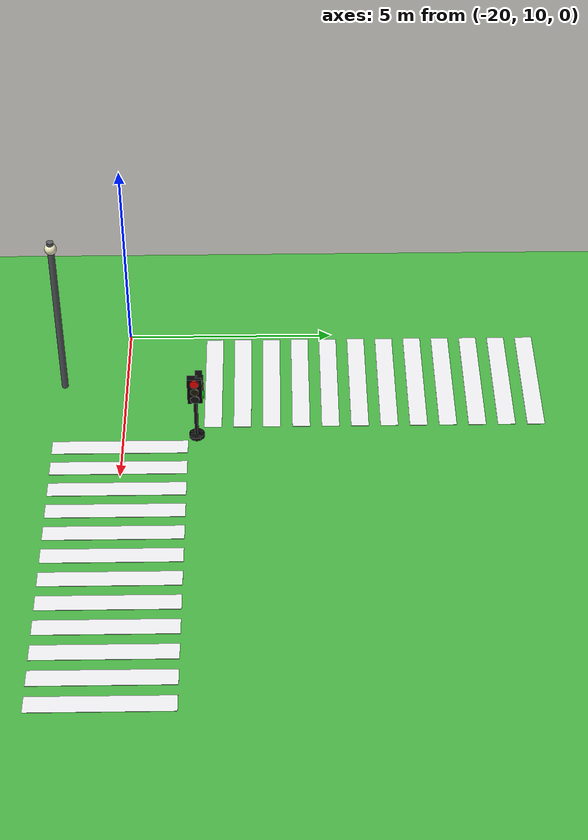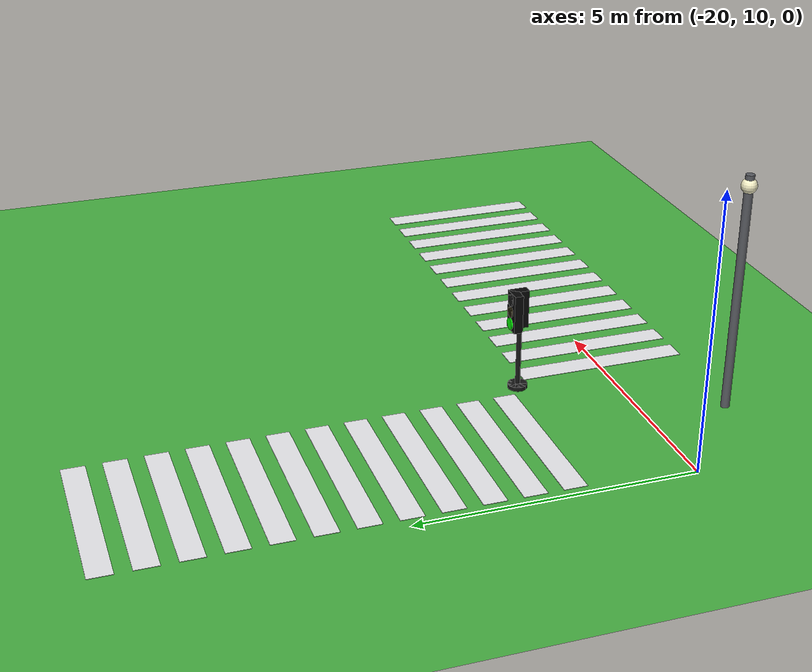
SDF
<sdf version="1.10">
 <world name="city_second">
  <model name="ground_plane">
   <static>true</static>
   <link name="link">
    <collision name="collision">
     <geometry><plane><normal>0 0 1</normal><size>300 300</size></plane></geometry>
    </collision>
    <visual name="visual">
     <geometry><plane><normal>0 0 1</normal><size>300 300</size></plane></geometry>
     <material>
      <ambient>0.280000001 0.689999998 0.25999999 1</ambient>
      <diffuse>0.280000001 0.689999998 0.25999999 1</diffuse>
      <specular>0.0299999993 0.0299999993 0.0299999993 1</specular>
     </material>
    </visual>
    <inertial>
     <mass>1</mass>
     <inertia><ixx>1</ixx><ixy>0</ixy><ixz>0</ixz><iyy>1</iyy><iyz>0</iyz><izz>1</izz></inertia>
    </inertial>
   </link>
  </model>
  <model name="lamp_1_2">
   <static>true</static>
   <pose>-18.1675 8.4933599999999991 2.2000000000000002 0 0 0</pose>
   <link name="link">
    <collision name="collision">
     <geometry>
      <cylinder><radius>0.080000000000000002</radius><length>4.4000000000000004</length></cylinder>
     </geometry>
    </collision>
    <visual name="pole">
     <geometry>
      <cylinder><radius>0.080000000000000002</radius><length>4.4000000000000004</length></cylinder>
     </geometry>
     <material>
      <ambient>0.349999994 0.360000014 0.379999995 1</ambient>
      <diffuse>0.349999994 0.360000014 0.379999995 1</diffuse>
      <specular>0.0299999993 0.0299999993 0.0299999993 1</specular>
     </material>
    </visual>
    <visual name="lamp_head">
     <pose>0 0 2 0 0 0</pose>
     <geometry><sphere><radius>0.14000000000000001</radius></sphere></geometry>
     <material>
      <ambient>0.959999979 0.939999998 0.779999971 1</ambient>
      <diffuse>0.959999979 0.939999998 0.779999971 1</diffuse>
      <specular>0.0299999993 0.0299999993 0.0299999993 1</specular>
     </material>
    </visual>
    <inertial>
     <mass>1</mass>
     <inertia><ixx>1</ixx><ixy>0</ixy><ixz>0</ixz><iyy>1</iyy><iyz>0</iyz><izz>1</izz></inertia>
    </inertial>
   </link>
  </model>
  <model name="crosswalk_v_2_1_east_5_1">
   <static>true</static>
   <pose>-18.222100000000001 15.9703 0.017000000000000001 0 0 0</pose>
   <link name="stripe_1">
    <collision name="collision">
     <geometry><box><size>3.2000000000000002 0.41999999999999998 0.01</size></box></geometry>
    </collision>
    <visual name="visual">
     <geometry><box><size>3.2000000000000002 0.41999999999999998 0.01</size></box></geometry>
     <material>
      <ambient>0.920000017 0.920000017 0.930000007 1</ambient>
      <diffuse>0.920000017 0.920000017 0.930000007 1</diffuse>
      <specular>0.0299999993 0.0299999993 0.0299999993 1</specular>
     </material>
    </visual>
    <pose>0 -3.8500000000000001 0 0 0 0</pose>
    <inertial>
     <mass>1</mass>
     <inertia><ixx>1</ixx><ixy>0</ixy><ixz>0</ixz><iyy>1</iyy><iyz>0</iyz><izz>1</izz></inertia>
    </inertial>
   </link>
   <link name="stripe_2">
    <collision name="collision">
     <geometry><box><size>3.2000000000000002 0.41999999999999998 0.01</size></box></geometry>
    </collision>
    <visual name="visual">
     <geometry><box><size>3.2000000000000002 0.41999999999999998 0.01</size></box></geometry>
     <material>
      <ambient>0.920000017 0.920000017 0.930000007 1</ambient>
      <diffuse>0.920000017 0.920000017 0.930000007 1</diffuse>
      <specular>0.0299999993 0.0299999993 0.0299999993 1</specular>
     </material>
    </visual>
    <pose>0 -3.1500000000000004 0 0 0 0</pose>
    <inertial>
     <mass>1</mass>
     <inertia><ixx>1</ixx><ixy>0</ixy><ixz>0</ixz><iyy>1</iyy><iyz>0</iyz><izz>1</izz></inertia>
    </inertial>
   </link>
   <link name="stripe_3">
    <collision name="collision">
     <geometry><box><size>3.2000000000000002 0.41999999999999998 0.01</size></box></geometry>
    </collision>
    <visual name="visual">
     <geometry><box><size>3.2000000000000002 0.41999999999999998 0.01</size></box></geometry>
     <material>
      <ambient>0.920000017 0.920000017 0.930000007 1</ambient>
      <diffuse>0.920000017 0.920000017 0.930000007 1</diffuse>
      <specular>0.0299999993 0.0299999993 0.0299999993 1</specular>
     </material>
    </visual>
    <pose>0 -2.4500000000000011 0 0 0 0</pose>
    <inertial>
     <mass>1</mass>
     <inertia><ixx>1</ixx><ixy>0</ixy><ixz>0</ixz><iyy>1</iyy><iyz>0</iyz><izz>1</izz></inertia>
    </inertial>
   </link>
   <link name="stripe_4">
    <collision name="collision">
     <geometry><box><size>3.2000000000000002 0.41999999999999998 0.01</size></box></geometry>
    </collision>
    <visual name="visual">
     <geometry><box><size>3.2000000000000002 0.41999999999999998 0.01</size></box></geometry>
     <material>
      <ambient>0.920000017 0.920000017 0.930000007 1</ambient>
      <diffuse>0.920000017 0.920000017 0.930000007 1</diffuse>
      <specular>0.0299999993 0.0299999993 0.0299999993 1</specular>
     </material>
    </visual>
    <pose>0 -1.75 0 0 0 0</pose>
    <inertial>
     <mass>1</mass>
     <inertia><ixx>1</ixx><ixy>0</ixy><ixz>0</ixz><iyy>1</iyy><iyz>0</iyz><izz>1</izz></inertia>
    </inertial>
   </link>
   <link name="stripe_5">
    <collision name="collision">
     <geometry><box><size>3.2000000000000002 0.41999999999999998 0.01</size></box></geometry>
    </collision>
    <visual name="visual">
     <geometry><box><size>3.2000000000000002 0.41999999999999998 0.01</size></box></geometry>
     <material>
      <ambient>0.920000017 0.920000017 0.930000007 1</ambient>
      <diffuse>0.920000017 0.920000017 0.930000007 1</diffuse>
      <specular>0.0299999993 0.0299999993 0.0299999993 1</specular>
     </material>
    </visual>
    <pose>0 -1.0500000000000007 0 0 0 0</pose>
    <inertial>
     <mass>1</mass>
     <inertia><ixx>1</ixx><ixy>0</ixy><ixz>0</ixz><iyy>1</iyy><iyz>0</iyz><izz>1</izz></inertia>
    </inertial>
   </link>
   <link name="stripe_6">
    <collision name="collision">
     <geometry><box><size>3.2000000000000002 0.41999999999999998 0.01</size></box></geometry>
    </collision>
    <visual name="visual">
     <geometry><box><size>3.2000000000000002 0.41999999999999998 0.01</size></box></geometry>
     <material>
      <ambient>0.920000017 0.920000017 0.930000007 1</ambient>
      <diffuse>0.920000017 0.920000017 0.930000007 1</diffuse>
      <specular>0.0299999993 0.0299999993 0.0299999993 1</specular>
     </material>
    </visual>
    <pose>0 -0.34999999999999964 0 0 0 0</pose>
    <inertial>
     <mass>1</mass>
     <inertia><ixx>1</ixx><ixy>0</ixy><ixz>0</ixz><iyy>1</iyy><iyz>0</iyz><izz>1</izz></inertia>
    </inertial>
   </link>
   <link name="stripe_7">
    <collision name="collision">
     <geometry><box><size>3.2000000000000002 0.41999999999999998 0.01</size></box></geometry>
    </collision>
    <visual name="visual">
     <geometry><box><size>3.2000000000000002 0.41999999999999998 0.01</size></box></geometry>
     <material>
      <ambient>0.920000017 0.920000017 0.930000007 1</ambient>
      <diffuse>0.920000017 0.920000017 0.930000007 1</diffuse>
      <specular>0.0299999993 0.0299999993 0.0299999993 1</specular>
     </material>
    </visual>
    <pose>0 0.34999999999999964 0 0 0 0</pose>
    <inertial>
     <mass>1</mass>
     <inertia><ixx>1</ixx><ixy>0</ixy><ixz>0</ixz><iyy>1</iyy><iyz>0</iyz><izz>1</izz></inertia>
    </inertial>
   </link>
   <link name="stripe_8">
    <collision name="collision">
     <geometry><box><size>3.2000000000000002 0.41999999999999998 0.01</size></box></geometry>
    </collision>
    <visual name="visual">
     <geometry><box><size>3.2000000000000002 0.41999999999999998 0.01</size></box></geometry>
     <material>
      <ambient>0.920000017 0.920000017 0.930000007 1</ambient>
      <diffuse>0.920000017 0.920000017 0.930000007 1</diffuse>
      <specular>0.0299999993 0.0299999993 0.0299999993 1</specular>
     </material>
    </visual>
    <pose>0 1.0499999999999989 0 0 0 0</pose>
    <inertial>
     <mass>1</mass>
     <inertia><ixx>1</ixx><ixy>0</ixy><ixz>0</ixz><iyy>1</iyy><iyz>0</iyz><izz>1</izz></inertia>
    </inertial>
   </link>
   <link name="stripe_9">
    <collision name="collision">
     <geometry><box><size>3.2000000000000002 0.41999999999999998 0.01</size></box></geometry>
    </collision>
    <visual name="visual">
     <geometry><box><size>3.2000000000000002 0.41999999999999998 0.01</size></box></geometry>
     <material>
      <ambient>0.920000017 0.920000017 0.930000007 1</ambient>
      <diffuse>0.920000017 0.920000017 0.930000007 1</diffuse>
      <specular>0.0299999993 0.0299999993 0.0299999993 1</specular>
     </material>
    </visual>
    <pose>0 1.7500000000000018 0 0 0 0</pose>
    <inertial>
     <mass>1</mass>
     <inertia><ixx>1</ixx><ixy>0</ixy><ixz>0</ixz><iyy>1</iyy><iyz>0</iyz><izz>1</izz></inertia>
    </inertial>
   </link>
   <link name="stripe_10">
    <collision name="collision">
     <geometry><box><size>3.2000000000000002 0.41999999999999998 0.01</size></box></geometry>
    </collision>
    <visual name="visual">
     <geometry><box><size>3.2000000000000002 0.41999999999999998 0.01</size></box></geometry>
     <material>
      <ambient>0.920000017 0.920000017 0.930000007 1</ambient>
      <diffuse>0.920000017 0.920000017 0.930000007 1</diffuse>
      <specular>0.0299999993 0.0299999993 0.0299999993 1</specular>
     </material>
    </visual>
    <pose>0 2.4500000000000011 0 0 0 0</pose>
    <inertial>
     <mass>1</mass>
     <inertia><ixx>1</ixx><ixy>0</ixy><ixz>0</ixz><iyy>1</iyy><iyz>0</iyz><izz>1</izz></inertia>
    </inertial>
   </link>
   <link name="stripe_11">
    <collision name="collision">
     <geometry><box><size>3.2000000000000002 0.41999999999999998 0.01</size></box></geometry>
    </collision>
    <visual name="visual">
     <geometry><box><size>3.2000000000000002 0.41999999999999998 0.01</size></box></geometry>
     <material>
      <ambient>0.920000017 0.920000017 0.930000007 1</ambient>
      <diffuse>0.920000017 0.920000017 0.930000007 1</diffuse>
      <specular>0.0299999993 0.0299999993 0.0299999993 1</specular>
     </material>
    </visual>
    <pose>0 3.1500000000000004 0 0 0 0</pose>
    <inertial>
     <mass>1</mass>
     <inertia><ixx>1</ixx><ixy>0</ixy><ixz>0</ixz><iyy>1</iyy><iyz>0</iyz><izz>1</izz></inertia>
    </inertial>
   </link>
   <link name="stripe_12">
    <collision name="collision">
     <geometry><box><size>3.2000000000000002 0.41999999999999998 0.01</size></box></geometry>
    </collision>
    <visual name="visual">
     <geometry><box><size>3.2000000000000002 0.41999999999999998 0.01</size></box></geometry>
     <material>
      <ambient>0.920000017 0.920000017 0.930000007 1</ambient>
      <diffuse>0.920000017 0.920000017 0.930000007 1</diffuse>
      <specular>0.0299999993 0.0299999993 0.0299999993 1</specular>
     </material>
    </visual>
    <pose>0 3.8499999999999996 0 0 0 0</pose>
    <inertial>
     <mass>1</mass>
     <inertia><ixx>1</ixx><ixy>0</ixy><ixz>0</ixz><iyy>1</iyy><iyz>0</iyz><izz>1</izz></inertia>
    </inertial>
   </link>
  </model>
  <model name="crosswalk_h_1_1_south_7_5">
   <static>true</static>
   <pose>-12.1074 9.9455399999999994 0.017000000000000001 0 0 0</pose>
   <link name="stripe_1">
    <collision name="collision">
     <geometry><box><size>0.41999999999999998 3.2000000000000002 0.01</size></box></geometry>
    </collision>
    <visual name="visual">
     <geometry><box><size>0.41999999999999998 3.2000000000000002 0.01</size></box></geometry>
     <material>
      <ambient>0.920000017 0.920000017 0.930000007 1</ambient>
      <diffuse>0.920000017 0.920000017 0.930000007 1</diffuse>
      <specular>0.0299999993 0.0299999993 0.0299999993 1</specular>
     </material>
    </visual>
    <pose>-3.8500000000000001 0 0 0 0 0</pose>
    <inertial>
     <mass>1</mass>
     <inertia><ixx>1</ixx><ixy>0</ixy><ixz>0</ixz><iyy>1</iyy><iyz>0</iyz><izz>1</izz></inertia>
    </inertial>
   </link>
   <link name="stripe_2">
    <collision name="collision">
     <geometry><box><size>0.41999999999999998 3.2000000000000002 0.01</size></box></geometry>
    </collision>
    <visual name="visual">
     <geometry><box><size>0.41999999999999998 3.2000000000000002 0.01</size></box></geometry>
     <material>
      <ambient>0.920000017 0.920000017 0.930000007 1</ambient>
      <diffuse>0.920000017 0.920000017 0.930000007 1</diffuse>
      <specular>0.0299999993 0.0299999993 0.0299999993 1</specular>
     </material>
    </visual>
    <pose>-3.1500000000000004 0 0 0 0 0</pose>
    <inertial>
     <mass>1</mass>
     <inertia><ixx>1</ixx><ixy>0</ixy><ixz>0</ixz><iyy>1</iyy><iyz>0</iyz><izz>1</izz></inertia>
    </inertial>
   </link>
   <link name="stripe_3">
    <collision name="collision">
     <geometry><box><size>0.41999999999999998 3.2000000000000002 0.01</size></box></geometry>
    </collision>
    <visual name="visual">
     <geometry><box><size>0.41999999999999998 3.2000000000000002 0.01</size></box></geometry>
     <material>
      <ambient>0.920000017 0.920000017 0.930000007 1</ambient>
      <diffuse>0.920000017 0.920000017 0.930000007 1</diffuse>
      <specular>0.0299999993 0.0299999993 0.0299999993 1</specular>
     </material>
    </visual>
    <pose>-2.4500000000000011 0 0 0 0 0</pose>
    <inertial>
     <mass>1</mass>
     <inertia><ixx>1</ixx><ixy>0</ixy><ixz>0</ixz><iyy>1</iyy><iyz>0</iyz><izz>1</izz></inertia>
    </inertial>
   </link>
   <link name="stripe_4">
    <collision name="collision">
     <geometry><box><size>0.41999999999999998 3.2000000000000002 0.01</size></box></geometry>
    </collision>
    <visual name="visual">
     <geometry><box><size>0.41999999999999998 3.2000000000000002 0.01</size></box></geometry>
     <material>
      <ambient>0.920000017 0.920000017 0.930000007 1</ambient>
      <diffuse>0.920000017 0.920000017 0.930000007 1</diffuse>
      <specular>0.0299999993 0.0299999993 0.0299999993 1</specular>
     </material>
    </visual>
    <pose>-1.75 0 0 0 0 0</pose>
    <inertial>
     <mass>1</mass>
     <inertia><ixx>1</ixx><ixy>0</ixy><ixz>0</ixz><iyy>1</iyy><iyz>0</iyz><izz>1</izz></inertia>
    </inertial>
   </link>
   <link name="stripe_5">
    <collision name="collision">
     <geometry><box><size>0.41999999999999998 3.2000000000000002 0.01</size></box></geometry>
    </collision>
    <visual name="visual">
     <geometry><box><size>0.41999999999999998 3.2000000000000002 0.01</size></box></geometry>
     <material>
      <ambient>0.920000017 0.920000017 0.930000007 1</ambient>
      <diffuse>0.920000017 0.920000017 0.930000007 1</diffuse>
      <specular>0.0299999993 0.0299999993 0.0299999993 1</specular>
     </material>
    </visual>
    <pose>-1.0500000000000007 0 0 0 0 0</pose>
    <inertial>
     <mass>1</mass>
     <inertia><ixx>1</ixx><ixy>0</ixy><ixz>0</ixz><iyy>1</iyy><iyz>0</iyz><izz>1</izz></inertia>
    </inertial>
   </link>
   <link name="stripe_6">
    <collision name="collision">
     <geometry><box><size>0.41999999999999998 3.2000000000000002 0.01</size></box></geometry>
    </collision>
    <visual name="visual">
     <geometry><box><size>0.41999999999999998 3.2000000000000002 0.01</size></box></geometry>
     <material>
      <ambient>0.920000017 0.920000017 0.930000007 1</ambient>
      <diffuse>0.920000017 0.920000017 0.930000007 1</diffuse>
      <specular>0.0299999993 0.0299999993 0.0299999993 1</specular>
     </material>
    </visual>
    <pose>-0.34999999999999964 0 0 0 0 0</pose>
    <inertial>
     <mass>1</mass>
     <inertia><ixx>1</ixx><ixy>0</ixy><ixz>0</ixz><iyy>1</iyy><iyz>0</iyz><izz>1</izz></inertia>
    </inertial>
   </link>
   <link name="stripe_7">
    <collision name="collision">
     <geometry><box><size>0.41999999999999998 3.2000000000000002 0.01</size></box></geometry>
    </collision>
    <visual name="visual">
     <geometry><box><size>0.41999999999999998 3.2000000000000002 0.01</size></box></geometry>
     <material>
      <ambient>0.920000017 0.920000017 0.930000007 1</ambient>
      <diffuse>0.920000017 0.920000017 0.930000007 1</diffuse>
      <specular>0.0299999993 0.0299999993 0.0299999993 1</specular>
     </material>
    </visual>
    <pose>0.34999999999999964 0 0 0 0 0</pose>
    <inertial>
     <mass>1</mass>
     <inertia><ixx>1</ixx><ixy>0</ixy><ixz>0</ixz><iyy>1</iyy><iyz>0</iyz><izz>1</izz></inertia>
    </inertial>
   </link>
   <link name="stripe_8">
    <collision name="collision">
     <geometry><box><size>0.41999999999999998 3.2000000000000002 0.01</size></box></geometry>
    </collision>
    <visual name="visual">
     <geometry><box><size>0.41999999999999998 3.2000000000000002 0.01</size></box></geometry>
     <material>
      <ambient>0.920000017 0.920000017 0.930000007 1</ambient>
      <diffuse>0.920000017 0.920000017 0.930000007 1</diffuse>
      <specular>0.0299999993 0.0299999993 0.0299999993 1</specular>
     </material>
    </visual>
    <pose>1.0500000000000007 0 0 0 0 0</pose>
    <inertial>
     <mass>1</mass>
     <inertia><ixx>1</ixx><ixy>0</ixy><ixz>0</ixz><iyy>1</iyy><iyz>0</iyz><izz>1</izz></inertia>
    </inertial>
   </link>
   <link name="stripe_9">
    <collision name="collision">
     <geometry><box><size>0.41999999999999998 3.2000000000000002 0.01</size></box></geometry>
    </collision>
    <visual name="visual">
     <geometry><box><size>0.41999999999999998 3.2000000000000002 0.01</size></box></geometry>
     <material>
      <ambient>0.920000017 0.920000017 0.930000007 1</ambient>
      <diffuse>0.920000017 0.920000017 0.930000007 1</diffuse>
      <specular>0.0299999993 0.0299999993 0.0299999993 1</specular>
     </material>
    </visual>
    <pose>1.75 0 0 0 0 0</pose>
    <inertial>
     <mass>1</mass>
     <inertia><ixx>1</ixx><ixy>0</ixy><ixz>0</ixz><iyy>1</iyy><iyz>0</iyz><izz>1</izz></inertia>
    </inertial>
   </link>
   <link name="stripe_10">
    <collision name="collision">
     <geometry><box><size>0.41999999999999998 3.2000000000000002 0.01</size></box></geometry>
    </collision>
    <visual name="visual">
     <geometry><box><size>0.41999999999999998 3.2000000000000002 0.01</size></box></geometry>
     <material>
      <ambient>0.920000017 0.920000017 0.930000007 1</ambient>
      <diffuse>0.920000017 0.920000017 0.930000007 1</diffuse>
      <specular>0.0299999993 0.0299999993 0.0299999993 1</specular>
     </material>
    </visual>
    <pose>2.4500000000000011 0 0 0 0 0</pose>
    <inertial>
     <mass>1</mass>
     <inertia><ixx>1</ixx><ixy>0</ixy><ixz>0</ixz><iyy>1</iyy><iyz>0</iyz><izz>1</izz></inertia>
    </inertial>
   </link>
   <link name="stripe_11">
    <collision name="collision">
     <geometry><box><size>0.41999999999999998 3.2000000000000002 0.01</size></box></geometry>
    </collision>
    <visual name="visual">
     <geometry><box><size>0.41999999999999998 3.2000000000000002 0.01</size></box></geometry>
     <material>
      <ambient>0.920000017 0.920000017 0.930000007 1</ambient>
      <diffuse>0.920000017 0.920000017 0.930000007 1</diffuse>
      <specular>0.0299999993 0.0299999993 0.0299999993 1</specular>
     </material>
    </visual>
    <pose>3.1500000000000004 0 0 0 0 0</pose>
    <inertial>
     <mass>1</mass>
     <inertia><ixx>1</ixx><ixy>0</ixy><ixz>0</ixz><iyy>1</iyy><iyz>0</iyz><izz>1</izz></inertia>
    </inertial>
   </link>
   <link name="stripe_12">
    <collision name="collision">
     <geometry><box><size>0.41999999999999998 3.2000000000000002 0.01</size></box></geometry>
    </collision>
    <visual name="visual">
     <geometry><box><size>0.41999999999999998 3.2000000000000002 0.01</size></box></geometry>
     <material>
      <ambient>0.920000017 0.920000017 0.930000007 1</ambient>
      <diffuse>0.920000017 0.920000017 0.930000007 1</diffuse>
      <specular>0.0299999993 0.0299999993 0.0299999993 1</specular>
     </material>
    </visual>
    <pose>3.8499999999999996 0 0 0 0 0</pose>
    <inertial>
     <mass>1</mass>
     <inertia><ixx>1</ixx><ixy>0</ixy><ixz>0</ixz><iyy>1</iyy><iyz>0</iyz><izz>1</izz></inertia>
    </inertial>
   </link>
  </model>
  <model name="simple_traffic_light_green_north_1_2_2">
   <static>true</static>
   <pose>-16.344982830740257 11.749732074179992 0 0 0 0</pose>
   <link name="base">
    <pose>0 0 0.040000000000000001 0 0 0</pose>
    <collision name="collision">
     <geometry>
      <cylinder><radius>0.17999999999999999</radius><length>0.080000000000000002</length></cylinder>
     </geometry>
    </collision>
    <visual name="visual">
     <geometry>
      <cylinder><radius>0.17999999999999999</radius><length>0.080000000000000002</length></cylinder>
     </geometry>
     <material>
      <ambient>0.0799999982 0.0799999982 0.0799999982 1</ambient>
      <diffuse>0.0799999982 0.0799999982 0.0799999982 1</diffuse>
      <specular>0.150000006 0.150000006 0.150000006 1</specular>
      <emissive>0 0 0 1</emissive>
     </material>
    </visual>
    <inertial>
     <mass>1</mass>
     <inertia><ixx>1</ixx><ixy>0</ixy><ixz>0</ixz><iyy>1</iyy><iyz>0</iyz><izz>1</izz></inertia>
    </inertial>
   </link>
   <link name="pole">
    <pose>0 0 0.80000000000000004 0 0 0</pose>
    <collision name="collision">
     <geometry>
      <cylinder><radius>0.044999999999999998</radius><length>1.6000000000000001</length></cylinder>
     </geometry>
    </collision>
    <visual name="visual">
     <geometry>
      <cylinder><radius>0.044999999999999998</radius><length>1.6000000000000001</length></cylinder>
     </geometry>
     <material>
      <ambient>0.0799999982 0.0799999982 0.0799999982 1</ambient>
      <diffuse>0.0799999982 0.0799999982 0.0799999982 1</diffuse>
      <specular>0.150000006 0.150000006 0.150000006 1</specular>
      <emissive>0 0 0 1</emissive>
     </material>
    </visual>
    <inertial>
     <mass>1</mass>
     <inertia><ixx>1</ixx><ixy>0</ixy><ixz>0</ixz><iyy>1</iyy><iyz>0</iyz><izz>1</izz></inertia>
    </inertial>
   </link>
   <link name="signal_box">
    <pose>0 0.089999999999999858 1.55 0 0 0</pose>
    <collision name="collision">
     <geometry><box><size>0.34000000000000002 0.16 0.71999999999999997</size></box></geometry>
    </collision>
    <visual name="visual">
     <geometry><box><size>0.34000000000000002 0.16 0.71999999999999997</size></box></geometry>
     <material>
      <ambient>0.0199999996 0.0199999996 0.0199999996 1</ambient>
      <diffuse>0.0199999996 0.0199999996 0.0199999996 1</diffuse>
      <specular>0.150000006 0.150000006 0.150000006 1</specular>
      <emissive>0 0 0 1</emissive>
     </material>
    </visual>
    <inertial>
     <mass>1</mass>
     <inertia><ixx>1</ixx><ixy>0</ixy><ixz>0</ixz><iyy>1</iyy><iyz>0</iyz><izz>1</izz></inertia>
    </inertial>
   </link>
   <link name="red_lens">
    <pose>0 0.18099999999999916 1.78 1.5707963268000003 0 0</pose>
    <collision name="collision">
     <geometry><cylinder><radius>0.105</radius><length>0.035000000000000003</length></cylinder></geometry>
    </collision>
    <visual name="visual">
     <geometry><cylinder><radius>0.105</radius><length>0.035000000000000003</length></cylinder></geometry>
     <material>
      <ambient>0.0799999982 0.0799999982 0.0799999982 1</ambient>
      <diffuse>0.0799999982 0.0799999982 0.0799999982 1</diffuse>
      <specular>0.150000006 0.150000006 0.150000006 1</specular>
      <emissive>0 0 0 1</emissive>
     </material>
    </visual>
    <inertial>
     <mass>1</mass>
     <inertia><ixx>1</ixx><ixy>0</ixy><ixz>0</ixz><iyy>1</iyy><iyz>0</iyz><izz>1</izz></inertia>
    </inertial>
   </link>
   <link name="yellow_lens">
    <pose>0 0.18200000000000038 1.55 1.5707963268000003 0 0</pose>
    <collision name="collision">
     <geometry>
      <cylinder><radius>0.095000000000000001</radius><length>0.035000000000000003</length></cylinder>
     </geometry>
    </collision>
    <visual name="visual">
     <geometry>
      <cylinder><radius>0.095000000000000001</radius><length>0.035000000000000003</length></cylinder>
     </geometry>
     <material>
      <ambient>0.119999997 0.100000001 0.0199999996 1</ambient>
      <diffuse>0.119999997 0.100000001 0.0199999996 1</diffuse>
      <specular>0.150000006 0.150000006 0.150000006 1</specular>
      <emissive>0 0 0 1</emissive>
     </material>
    </visual>
    <inertial>
     <mass>1</mass>
     <inertia><ixx>1</ixx><ixy>0</ixy><ixz>0</ixz><iyy>1</iyy><iyz>0</iyz><izz>1</izz></inertia>
    </inertial>
   </link>
   <link name="green_lens">
    <pose>0 0.18299999999999983 1.3200000000000001 1.5707963268000003 0 0</pose>
    <collision name="collision">
     <geometry><cylinder><radius>0.105</radius><length>0.035000000000000003</length></cylinder></geometry>
    </collision>
    <visual name="visual">
     <geometry><cylinder><radius>0.105</radius><length>0.035000000000000003</length></cylinder></geometry>
     <material>
      <ambient>0.0199999996 1 0.0199999996 1</ambient>
      <diffuse>0.0199999996 1 0.0199999996 1</diffuse>
      <specular>0.150000006 0.150000006 0.150000006 1</specular>
      <emissive>0.0199999996 1 0.0199999996 1</emissive>
     </material>
    </visual>
    <inertial>
     <mass>1</mass>
     <inertia><ixx>1</ixx><ixy>0</ixy><ixz>0</ixz><iyy>1</iyy><iyz>0</iyz><izz>1</izz></inertia>
    </inertial>
   </link>
  </model>
  <model name="simple_traffic_light_red_east_5">
   <static>true</static>
   <pose>-16.341755595436247 11.74528513419834 -2.7755575615628914e-17 0 0 -1.5707999672671753</pose>
   <link name="base">
    <pose>0 0 0.040000000000000001 0 0 0</pose>
    <collision name="collision">
     <geometry>
      <cylinder><radius>0.17999999999999999</radius><length>0.080000000000000002</length></cylinder>
     </geometry>
    </collision>
    <visual name="visual">
     <geometry>
      <cylinder><radius>0.17999999999999999</radius><length>0.080000000000000002</length></cylinder>
     </geometry>
     <material>
      <ambient>0.0799999982 0.0799999982 0.0799999982 1</ambient>
      <diffuse>0.0799999982 0.0799999982 0.0799999982 1</diffuse>
      <specular>0.150000006 0.150000006 0.150000006 1</specular>
      <emissive>0 0 0 1</emissive>
     </material>
    </visual>
    <inertial>
     <mass>1</mass>
     <inertia><ixx>1</ixx><ixy>0</ixy><ixz>0</ixz><iyy>1</iyy><iyz>0</iyz><izz>1</izz></inertia>
    </inertial>
   </link>
   <link name="pole">
    <pose>-2.6645352591003757e-14 -2.4868995751603507e-14 0.80000000000000004 0 0 -1.1102230246251565e-16</pose>
    <collision name="collision">
     <geometry>
      <cylinder><radius>0.044999999999999998</radius><length>1.6000000000000001</length></cylinder>
     </geometry>
    </collision>
    <visual name="visual">
     <geometry>
      <cylinder><radius>0.044999999999999998</radius><length>1.6000000000000001</length></cylinder>
     </geometry>
     <material>
      <ambient>0.0799999982 0.0799999982 0.0799999982 1</ambient>
      <diffuse>0.0799999982 0.0799999982 0.0799999982 1</diffuse>
      <specular>0.150000006 0.150000006 0.150000006 1</specular>
      <emissive>0 0 0 1</emissive>
     </material>
    </visual>
    <inertial>
     <mass>1</mass>
     <inertia><ixx>1</ixx><ixy>0</ixy><ixz>0</ixz><iyy>1</iyy><iyz>0</iyz><izz>1</izz></inertia>
    </inertial>
   </link>
   <link name="signal_box">
    <pose>-3.5527136788005009e-15 0.089999999999971436 1.5500000000000003 0 0 -1.1102230246251565e-16</pose>
    <collision name="collision">
     <geometry><box><size>0.34000000000000002 0.16 0.71999999999999997</size></box></geometry>
    </collision>
    <visual name="visual">
     <geometry><box><size>0.34000000000000002 0.16 0.71999999999999997</size></box></geometry>
     <material>
      <ambient>0.0199999996 0.0199999996 0.0199999996 1</ambient>
      <diffuse>0.0199999996 0.0199999996 0.0199999996 1</diffuse>
      <specular>0.150000006 0.150000006 0.150000006 1</specular>
      <emissive>0 0 0 1</emissive>
     </material>
    </visual>
    <inertial>
     <mass>1</mass>
     <inertia><ixx>1</ixx><ixy>0</ixy><ixz>0</ixz><iyy>1</iyy><iyz>0</iyz><izz>1</izz></inertia>
    </inertial>
   </link>
   <link name="red_lens">
    <pose>-2.3092638912203256e-14 0.18099999999996541 1.7800000000000002 1.5707963268000005 -7.8504622949614379e-17 6.0448559659323335e-15</pose>
    <collision name="collision">
     <geometry><cylinder><radius>0.105</radius><length>0.035000000000000003</length></cylinder></geometry>
    </collision>
    <visual name="visual">
     <geometry><cylinder><radius>0.105</radius><length>0.035000000000000003</length></cylinder></geometry>
     <material>
      <ambient>1 0.0199999996 0.0199999996 1</ambient>
      <diffuse>1 0.0199999996 0.0199999996 1</diffuse>
      <specular>0.150000006 0.150000006 0.150000006 1</specular>
      <emissive>1 0.0199999996 0.0199999996 1</emissive>
     </material>
    </visual>
    <inertial>
     <mass>1</mass>
     <inertia><ixx>1</ixx><ixy>0</ixy><ixz>0</ixz><iyy>1</iyy><iyz>0</iyz><izz>1</izz></inertia>
    </inertial>
   </link>
   <link name="yellow_lens">
    <pose>-3.5527136788005009e-14 0.1819999999999915 1.5500000000000003 1.5707963268000005 -7.8504622949614379e-17 6.0448559659323335e-15</pose>
    <collision name="collision">
     <geometry>
      <cylinder><radius>0.095000000000000001</radius><length>0.035000000000000003</length></cylinder>
     </geometry>
    </collision>
    <visual name="visual">
     <geometry>
      <cylinder><radius>0.095000000000000001</radius><length>0.035000000000000003</length></cylinder>
     </geometry>
     <material>
      <ambient>0.119999997 0.100000001 0.0199999996 1</ambient>
      <diffuse>0.119999997 0.100000001 0.0199999996 1</diffuse>
      <specular>0.150000006 0.150000006 0.150000006 1</specular>
      <emissive>0 0 0 1</emissive>
     </material>
    </visual>
    <inertial>
     <mass>1</mass>
     <inertia><ixx>1</ixx><ixy>0</ixy><ixz>0</ixz><iyy>1</iyy><iyz>0</iyz><izz>1</izz></inertia>
    </inertial>
   </link>
   <link name="green_lens">
    <pose>-1.7763568394002505e-14 0.18299999999998917 1.3199999999999998 1.5707963268000005 -7.8504622949614379e-17 6.0448559659323335e-15</pose>
    <collision name="collision">
     <geometry><cylinder><radius>0.105</radius><length>0.035000000000000003</length></cylinder></geometry>
    </collision>
    <visual name="visual">
     <geometry><cylinder><radius>0.105</radius><length>0.035000000000000003</length></cylinder></geometry>
     <material>
      <ambient>0.0799999982 0.0799999982 0.0799999982 1</ambient>
      <diffuse>0.0799999982 0.0799999982 0.0799999982 1</diffuse>
      <specular>0.150000006 0.150000006 0.150000006 1</specular>
      <emissive>0 0 0 1</emissive>
     </material>
    </visual>
    <inertial>
     <mass>1</mass>
     <inertia><ixx>1</ixx><ixy>0</ixy><ixz>0</ixz><iyy>1</iyy><iyz>0</iyz><izz>1</izz></inertia>
    </inertial>
   </link>
  </model>
 </world>
</sdf>
